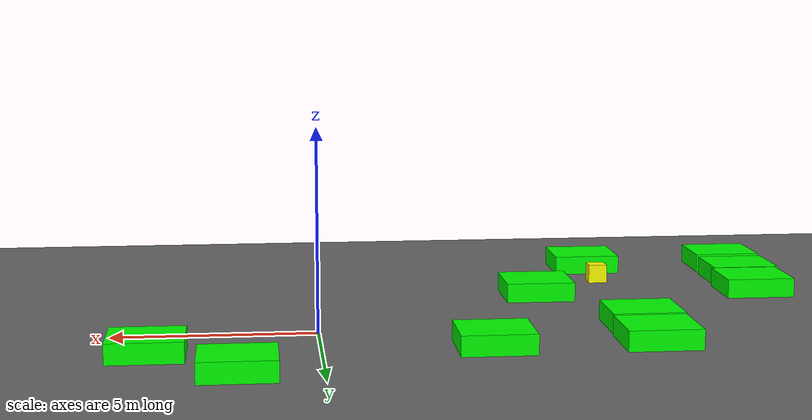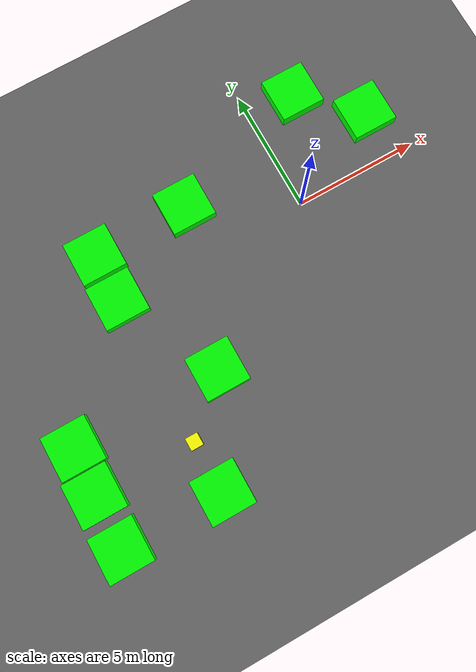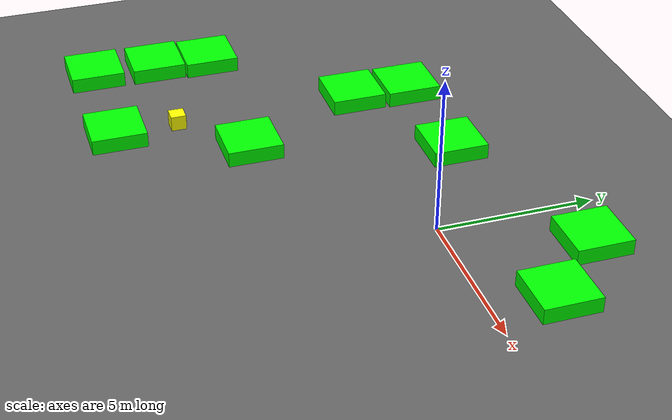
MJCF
<mujoco model="lvl4_standard_obs10_d2mid_seed35">
    <compiler angle="degree" coordinate="local" inertiafromgeom="true"/>
    <option integrator="RK4" timestep="0.01"/>

    <asset>
        <texture builtin="gradient" height="100" rgb1="0.6 0.8 1" rgb2="0 0 0" type="skybox" width="100"/>
        <texture name="floor_texture" type="2d" builtin="checker" width="100" height="100" rgb1="0 0 0" rgb2="0.8 0.8 0.8"/>
        <material name="MatPlane" reflectance="0.5" shininess="1" specular="1" texrepeat="10 10" texture="floor_texture"/>
    </asset>

    <!-- Excluding the contact between the agent and the goal, and the agent and the floor -->
    <contact>
        <exclude body1="agent" body2="goal"/>
        <exclude body1 = "agent" body2 = "floor"/>
    </contact>

    <extension>
        <plugin plugin = "mujoco.pid">
            <instance name = "pid1">
                <config key="kp" value="2"/>
                <config key="ki" value="0"/>
                <config key="kd" value="55"/>
            </instance>
        </plugin>
    </extension>

    <worldbody>
        <light cutoff="100" diffuse="1 1 1" dir="-0 0 -1.3" directional="true" exponent="1" pos="0 0 1.3" specular=".1 .1 .1"/>
        <body name="floor" pos="0 0 0">
            <geom name="floor_geom" type="plane" size="20 20 0.1" material="MatPlane"/>
        </body>

                <body name="goal" pos="0.0000 0.0000 0">
            <geom name="goal_geom" type="plane" size="0.5 0.5 1" pos="0 0 0" rgba="1 0 0 1"/>
        </body>

                <body name="agent" pos="-8.0000 -6.0000 0.250">
            <joint name="j1" type="slide" axis ="1 0 0 "/>
            <joint name="j2" type="slide" axis ="0 1 0 "/>
            <geom name="agent_geom" type="box" size="0.25 0.25 0.250" rgba="1 1 0 1"/>
        </body>

        <body name="obstacle1" pos="1.9174 4.0507 0.250">  <geom name="obstacle1_geom" type="box" size="0.9000 0.9000 0.250" rgba="0 1 0 1"/></body>
        <body name="obstacle2" pos="-7.9401 1.9743 0.250">  <geom name="obstacle2_geom" type="box" size="0.9000 0.9000 0.250" rgba="0 1 0 1"/></body>
        <body name="obstacle3" pos="-4.0329 2.0703 0.250">  <geom name="obstacle3_geom" type="box" size="0.9000 0.9000 0.250" rgba="0 1 0 1"/></body>
        <body name="obstacle4" pos="4.0075 2.0050 0.250">  <geom name="obstacle4_geom" type="box" size="0.9000 0.9000 0.250" rgba="0 1 0 1"/></body>
        <body name="obstacle5" pos="-7.9817 0.0370 0.250">  <geom name="obstacle5_geom" type="box" size="0.9000 0.9000 0.250" rgba="0 1 0 1"/></body>
        <body name="obstacle6" pos="-11.9316 -4.0603 0.250">  <geom name="obstacle6_geom" type="box" size="0.9000 0.9000 0.250" rgba="0 1 0 1"/></body>
        <body name="obstacle7" pos="-5.9869 -4.0964 0.250">  <geom name="obstacle7_geom" type="box" size="0.9000 0.9000 0.250" rgba="0 1 0 1"/></body>
        <body name="obstacle8" pos="-12.0306 -5.9121 0.250">  <geom name="obstacle8_geom" type="box" size="0.9000 0.9000 0.250" rgba="0 1 0 1"/></body>
        <body name="obstacle9" pos="-12.0693 -8.0347 0.250">  <geom name="obstacle9_geom" type="box" size="0.9000 0.9000 0.250" rgba="0 1 0 1"/></body>
        <body name="obstacle10" pos="-7.9668 -8.0620 0.250">  <geom name="obstacle10_geom" type="box" size="0.9000 0.9000 0.250" rgba="0 1 0 1"/></body>

    </worldbody>

    <sensor>
<!-- SENSORS -->

        <distance name="dist1" geom1="agent_geom" geom2="obstacle1_geom" cutoff="1.5"/>
        <distance name="dist2" geom1="agent_geom" geom2="obstacle2_geom" cutoff="1.5"/>
        <distance name="dist3" geom1="agent_geom" geom2="obstacle3_geom" cutoff="1.5"/>
        <distance name="dist4" geom1="agent_geom" geom2="obstacle4_geom" cutoff="1.5"/>
        <distance name="dist5" geom1="agent_geom" geom2="obstacle5_geom" cutoff="1.5"/>
        <distance name="dist6" geom1="agent_geom" geom2="obstacle6_geom" cutoff="1.5"/>
        <distance name="dist7" geom1="agent_geom" geom2="obstacle7_geom" cutoff="1.5"/>
        <distance name="dist8" geom1="agent_geom" geom2="obstacle8_geom" cutoff="1.5"/>
        <distance name="dist9" geom1="agent_geom" geom2="obstacle9_geom" cutoff="1.5"/>
        <distance name="dist10" geom1="agent_geom" geom2="obstacle10_geom" cutoff="1.5"/>
</sensor>

    <actuator>
        <plugin joint="j1" plugin="mujoco.pid" instance="pid1" />
        <plugin joint="j2" plugin="mujoco.pid" instance="pid1"/>
    </actuator>
</mujoco>
